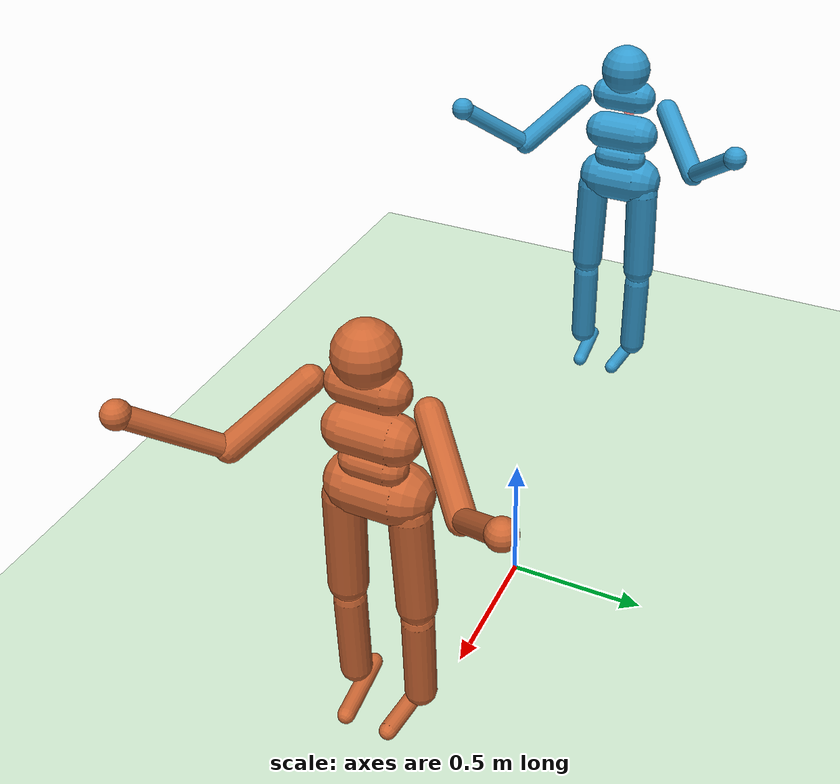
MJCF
<mujoco model="humanoid_hug">
  <compiler angle="degree" inertiafromgeom="true"/>
  <option timestep="0.005" iterations="50" tolerance="1e-10" solver="Newton" jacobian="dense" cone="pyramidal"/>

  <size nstack="3000000" nuser_body="1"/>

  <default>
    <joint armature="1" damping="1" limited="true"/>
    <geom conaffinity="1" condim="3" friction="0.8 0.1 0.1" margin="0.001" material="geom"/>
    <motor ctrlrange="-1 1" ctrllimited="true"/>
  </default>

  <asset>
    <texture type="skybox" builtin="gradient" rgb1="0.3 0.5 0.7" rgb2="0 0 0" width="512" height="3072"/>
    <texture type="2d" name="groundplane" builtin="checker" mark="edge" rgb1="0.2 0.3 0.4" rgb2="0.1 0.2 0.3" markrgb="0.8 0.8 0.8" width="300" height="300"/>
    <material name="groundplane" texture="groundplane" texuniform="true" texrepeat="5 5" reflectance="0.2"/>
    <material name="geom" rgba="0.8 0.6 0.4 1"/>
    <material name="h0_mat" rgba="0.2 0.6 0.8 1"/>
    <material name="h1_mat" rgba="0.8 0.4 0.2 1"/>
  </asset>

  <worldbody>
    <light cutoff="100" diffuse="1 1 1" dir="-0 0 -1.3" directional="true" exponent="1" pos="0 0 1.3" specular="0.1 0.1 0.1"/>
    <geom conaffinity="1" condim="3" name="floor" pos="0 0 0" rgba="0.8 0.9 0.8 1" size="40 40 0.1" type="plane" material="groundplane"/>

    <!-- ==================== HUMANOID 0 (h0) ==================== -->
    <body name="h0_torso" pos="-1.0 0 1.4">
      <camera name="h0_track" mode="trackcom" pos="0 -4 0" xyaxes="1 0 0 0 0 1"/>
      <freejoint name="h0_root"/>

      <!-- Torso geoms -->
      <geom name="h0_torso_geom" fromto="0 -0.07 0 0 0.07 0" size="0.07" type="capsule" material="h0_mat"/>
      <geom name="h0_chest_geom" fromto="0 -0.06 0.15 0 0.06 0.15" size="0.06" type="capsule" material="h0_mat"/>
      <geom name="h0_abdomen_geom" fromto="0 -0.05 -0.1 0 0.05 -0.1" size="0.05" type="capsule" material="h0_mat"/>

      <!-- Sites for hug detection -->
      <site name="h0_chest" pos="0 0 0.15" size="0.02" rgba="1 0 0 0.5"/>
      <site name="h0_pelvis" pos="0 0 -0.2" size="0.02" rgba="1 0 0 0.5"/>
      <site name="h0_back" pos="-0.08 0 0.05" size="0.02" rgba="1 0 0 0.5"/>

      <!-- Head -->
      <body name="h0_head" pos="0 0 0.25">
        <joint name="h0_head_yaw" type="hinge" axis="0 0 1" range="-50 50" armature="0.02" damping="0.1" stiffness="5"/>
        <joint name="h0_head_pitch" type="hinge" axis="0 1 0" range="-30 30" armature="0.02" damping="0.1" stiffness="5"/>
        <geom name="h0_head_geom" type="sphere" size="0.09" material="h0_mat"/>
        <site name="h0_head_site" pos="0 0 0.05" size="0.02" rgba="1 0 0 0.5"/>
      </body>

      <!-- Left Upper Arm -->
      <body name="h0_left_upper_arm" pos="0 0.17 0.12">
        <joint name="h0_left_shoulder1" type="hinge" axis="2 1 1" range="-85 60" armature="0.0068"/>
        <joint name="h0_left_shoulder2" type="hinge" axis="0 -1 1" range="-85 60" armature="0.0051"/>
        <geom name="h0_left_upper_arm_geom" fromto="0 0 0 0.16 0.16 -0.16" size="0.04" type="capsule" material="h0_mat"/>

        <!-- Left Lower Arm -->
        <body name="h0_left_lower_arm" pos="0.16 0.16 -0.16">
          <joint name="h0_left_elbow" type="hinge" axis="0 -1 1" range="-90 50" stiffness="0" armature="0.0028"/>
          <geom name="h0_left_lower_arm_geom" fromto="0.01 0.01 0.01 0.17 0.17 0.17" size="0.031" type="capsule" material="h0_mat"/>

          <!-- Left Hand -->
          <body name="h0_left_hand" pos="0.18 0.18 0.18">
            <geom name="h0_left_hand_geom" type="sphere" size="0.04" material="h0_mat"/>
            <site name="h0_lhand" pos="0 0 0" size="0.02" rgba="0 1 0 0.5"/>
          </body>
        </body>
      </body>

      <!-- Right Upper Arm -->
      <body name="h0_right_upper_arm" pos="0 -0.17 0.12">
        <joint name="h0_right_shoulder1" type="hinge" axis="2 -1 1" range="-60 85" armature="0.0068"/>
        <joint name="h0_right_shoulder2" type="hinge" axis="0 1 1" range="-60 85" armature="0.0051"/>
        <geom name="h0_right_upper_arm_geom" fromto="0 0 0 0.16 -0.16 -0.16" size="0.04" type="capsule" material="h0_mat"/>

        <!-- Right Lower Arm -->
        <body name="h0_right_lower_arm" pos="0.16 -0.16 -0.16">
          <joint name="h0_right_elbow" type="hinge" axis="0 -1 -1" range="-90 50" stiffness="0" armature="0.0028"/>
          <geom name="h0_right_lower_arm_geom" fromto="0.01 -0.01 0.01 0.17 -0.17 0.17" size="0.031" type="capsule" material="h0_mat"/>

          <!-- Right Hand -->
          <body name="h0_right_hand" pos="0.18 -0.18 0.18">
            <geom name="h0_right_hand_geom" type="sphere" size="0.04" material="h0_mat"/>
            <site name="h0_rhand" pos="0 0 0" size="0.02" rgba="0 1 0 0.5"/>
          </body>
        </body>
      </body>

      <!-- Lower body (pelvis) -->
      <body name="h0_lower_body" pos="0 0 -0.2">
        <joint name="h0_abdomen_z" type="hinge" axis="0 0 1" range="-45 45" armature="0.02"/>
        <joint name="h0_abdomen_y" type="hinge" axis="0 1 0" range="-75 30" armature="0.02"/>
        <geom name="h0_pelvis_geom" fromto="-0.02 -0.07 0 -0.02 0.07 0" size="0.09" type="capsule" material="h0_mat"/>

        <!-- Left Thigh -->
        <body name="h0_left_thigh" pos="0 0.1 -0.04">
          <joint name="h0_left_hip_x" type="hinge" axis="1 0 0" range="-25 5" armature="0.01"/>
          <joint name="h0_left_hip_z" type="hinge" axis="0 0 1" range="-60 35" armature="0.01"/>
          <joint name="h0_left_hip_y" type="hinge" axis="0 1 0" range="-110 20" armature="0.01"/>
          <geom name="h0_left_thigh_geom" fromto="0 0 0 0 0.01 -0.34" size="0.06" type="capsule" material="h0_mat"/>

          <!-- Left Shin -->
          <body name="h0_left_shin" pos="0 0.01 -0.403">
            <joint name="h0_left_knee" type="hinge" axis="0 1 0" range="-160 -2" armature="0.006"/>
            <geom name="h0_left_shin_geom" fromto="0 0 0 0 0 -0.3" size="0.049" type="capsule" material="h0_mat"/>

            <!-- Left Foot -->
            <body name="h0_left_foot" pos="0 0 -0.35">
              <joint name="h0_left_ankle" type="hinge" axis="0 1 0" range="-50 50" armature="0.008"/>
              <geom name="h0_left_foot_geom" fromto="-0.07 -0.02 0 0.14 -0.04 0" size="0.027" type="capsule" material="h0_mat"/>
            </body>
          </body>
        </body>

        <!-- Right Thigh -->
        <body name="h0_right_thigh" pos="0 -0.1 -0.04">
          <joint name="h0_right_hip_x" type="hinge" axis="-1 0 0" range="-25 5" armature="0.01"/>
          <joint name="h0_right_hip_z" type="hinge" axis="0 0 -1" range="-60 35" armature="0.01"/>
          <joint name="h0_right_hip_y" type="hinge" axis="0 1 0" range="-110 20" armature="0.01"/>
          <geom name="h0_right_thigh_geom" fromto="0 0 0 0 -0.01 -0.34" size="0.06" type="capsule" material="h0_mat"/>

          <!-- Right Shin -->
          <body name="h0_right_shin" pos="0 -0.01 -0.403">
            <joint name="h0_right_knee" type="hinge" axis="0 1 0" range="-160 -2" armature="0.006"/>
            <geom name="h0_right_shin_geom" fromto="0 0 0 0 0 -0.3" size="0.049" type="capsule" material="h0_mat"/>

            <!-- Right Foot -->
            <body name="h0_right_foot" pos="0 0 -0.35">
              <joint name="h0_right_ankle" type="hinge" axis="0 1 0" range="-50 50" armature="0.008"/>
              <geom name="h0_right_foot_geom" fromto="-0.07 0.02 0 0.14 0.04 0" size="0.027" type="capsule" material="h0_mat"/>
            </body>
          </body>
        </body>
      </body>
    </body>

    <!-- ==================== HUMANOID 1 (h1) ==================== -->
    <body name="h1_torso" pos="1.0 0 1.4">
      <camera name="h1_track" mode="trackcom" pos="0 -4 0" xyaxes="1 0 0 0 0 1"/>
      <freejoint name="h1_root"/>

      <!-- Torso geoms -->
      <geom name="h1_torso_geom" fromto="0 -0.07 0 0 0.07 0" size="0.07" type="capsule" material="h1_mat"/>
      <geom name="h1_chest_geom" fromto="0 -0.06 0.15 0 0.06 0.15" size="0.06" type="capsule" material="h1_mat"/>
      <geom name="h1_abdomen_geom" fromto="0 -0.05 -0.1 0 0.05 -0.1" size="0.05" type="capsule" material="h1_mat"/>

      <!-- Sites for hug detection -->
      <site name="h1_chest" pos="0 0 0.15" size="0.02" rgba="1 0 0 0.5"/>
      <site name="h1_pelvis" pos="0 0 -0.2" size="0.02" rgba="1 0 0 0.5"/>
      <site name="h1_back" pos="-0.08 0 0.05" size="0.02" rgba="1 0 0 0.5"/>

      <!-- Head -->
      <body name="h1_head" pos="0 0 0.25">
        <joint name="h1_head_yaw" type="hinge" axis="0 0 1" range="-50 50" armature="0.02" damping="0.1" stiffness="5"/>
        <joint name="h1_head_pitch" type="hinge" axis="0 1 0" range="-30 30" armature="0.02" damping="0.1" stiffness="5"/>
        <geom name="h1_head_geom" type="sphere" size="0.09" material="h1_mat"/>
        <site name="h1_head_site" pos="0 0 0.05" size="0.02" rgba="1 0 0 0.5"/>
      </body>

      <!-- Left Upper Arm -->
      <body name="h1_left_upper_arm" pos="0 0.17 0.12">
        <joint name="h1_left_shoulder1" type="hinge" axis="2 1 1" range="-85 60" armature="0.0068"/>
        <joint name="h1_left_shoulder2" type="hinge" axis="0 -1 1" range="-85 60" armature="0.0051"/>
        <geom name="h1_left_upper_arm_geom" fromto="0 0 0 0.16 0.16 -0.16" size="0.04" type="capsule" material="h1_mat"/>

        <!-- Left Lower Arm -->
        <body name="h1_left_lower_arm" pos="0.16 0.16 -0.16">
          <joint name="h1_left_elbow" type="hinge" axis="0 -1 1" range="-90 50" stiffness="0" armature="0.0028"/>
          <geom name="h1_left_lower_arm_geom" fromto="0.01 0.01 0.01 0.17 0.17 0.17" size="0.031" type="capsule" material="h1_mat"/>

          <!-- Left Hand -->
          <body name="h1_left_hand" pos="0.18 0.18 0.18">
            <geom name="h1_left_hand_geom" type="sphere" size="0.04" material="h1_mat"/>
            <site name="h1_lhand" pos="0 0 0" size="0.02" rgba="0 1 0 0.5"/>
          </body>
        </body>
      </body>

      <!-- Right Upper Arm -->
      <body name="h1_right_upper_arm" pos="0 -0.17 0.12">
        <joint name="h1_right_shoulder1" type="hinge" axis="2 -1 1" range="-60 85" armature="0.0068"/>
        <joint name="h1_right_shoulder2" type="hinge" axis="0 1 1" range="-60 85" armature="0.0051"/>
        <geom name="h1_right_upper_arm_geom" fromto="0 0 0 0.16 -0.16 -0.16" size="0.04" type="capsule" material="h1_mat"/>

        <!-- Right Lower Arm -->
        <body name="h1_right_lower_arm" pos="0.16 -0.16 -0.16">
          <joint name="h1_right_elbow" type="hinge" axis="0 -1 -1" range="-90 50" stiffness="0" armature="0.0028"/>
          <geom name="h1_right_lower_arm_geom" fromto="0.01 -0.01 0.01 0.17 -0.17 0.17" size="0.031" type="capsule" material="h1_mat"/>

          <!-- Right Hand -->
          <body name="h1_right_hand" pos="0.18 -0.18 0.18">
            <geom name="h1_right_hand_geom" type="sphere" size="0.04" material="h1_mat"/>
            <site name="h1_rhand" pos="0 0 0" size="0.02" rgba="0 1 0 0.5"/>
          </body>
        </body>
      </body>

      <!-- Lower body (pelvis) -->
      <body name="h1_lower_body" pos="0 0 -0.2">
        <joint name="h1_abdomen_z" type="hinge" axis="0 0 1" range="-45 45" armature="0.02"/>
        <joint name="h1_abdomen_y" type="hinge" axis="0 1 0" range="-75 30" armature="0.02"/>
        <geom name="h1_pelvis_geom" fromto="-0.02 -0.07 0 -0.02 0.07 0" size="0.09" type="capsule" material="h1_mat"/>

        <!-- Left Thigh -->
        <body name="h1_left_thigh" pos="0 0.1 -0.04">
          <joint name="h1_left_hip_x" type="hinge" axis="1 0 0" range="-25 5" armature="0.01"/>
          <joint name="h1_left_hip_z" type="hinge" axis="0 0 1" range="-60 35" armature="0.01"/>
          <joint name="h1_left_hip_y" type="hinge" axis="0 1 0" range="-110 20" armature="0.01"/>
          <geom name="h1_left_thigh_geom" fromto="0 0 0 0 0.01 -0.34" size="0.06" type="capsule" material="h1_mat"/>

          <!-- Left Shin -->
          <body name="h1_left_shin" pos="0 0.01 -0.403">
            <joint name="h1_left_knee" type="hinge" axis="0 1 0" range="-160 -2" armature="0.006"/>
            <geom name="h1_left_shin_geom" fromto="0 0 0 0 0 -0.3" size="0.049" type="capsule" material="h1_mat"/>

            <!-- Left Foot -->
            <body name="h1_left_foot" pos="0 0 -0.35">
              <joint name="h1_left_ankle" type="hinge" axis="0 1 0" range="-50 50" armature="0.008"/>
              <geom name="h1_left_foot_geom" fromto="-0.07 -0.02 0 0.14 -0.04 0" size="0.027" type="capsule" material="h1_mat"/>
            </body>
          </body>
        </body>

        <!-- Right Thigh -->
        <body name="h1_right_thigh" pos="0 -0.1 -0.04">
          <joint name="h1_right_hip_x" type="hinge" axis="-1 0 0" range="-25 5" armature="0.01"/>
          <joint name="h1_right_hip_z" type="hinge" axis="0 0 -1" range="-60 35" armature="0.01"/>
          <joint name="h1_right_hip_y" type="hinge" axis="0 1 0" range="-110 20" armature="0.01"/>
          <geom name="h1_right_thigh_geom" fromto="0 0 0 0 -0.01 -0.34" size="0.06" type="capsule" material="h1_mat"/>

          <!-- Right Shin -->
          <body name="h1_right_shin" pos="0 -0.01 -0.403">
            <joint name="h1_right_knee" type="hinge" axis="0 1 0" range="-160 -2" armature="0.006"/>
            <geom name="h1_right_shin_geom" fromto="0 0 0 0 0 -0.3" size="0.049" type="capsule" material="h1_mat"/>

            <!-- Right Foot -->
            <body name="h1_right_foot" pos="0 0 -0.35">
              <joint name="h1_right_ankle" type="hinge" axis="0 1 0" range="-50 50" armature="0.008"/>
              <geom name="h1_right_foot_geom" fromto="-0.07 0.02 0 0.14 0.04 0" size="0.027" type="capsule" material="h1_mat"/>
            </body>
          </body>
        </body>
      </body>
    </body>
  </worldbody>

  <actuator>
    <!-- Humanoid 0 actuators (21 total) -->
    <motor name="h0_abdomen_z" joint="h0_abdomen_z" gear="100" ctrlrange="-1 1"/>
    <motor name="h0_abdomen_y" joint="h0_abdomen_y" gear="100" ctrlrange="-1 1"/>
    <motor name="h0_left_hip_x" joint="h0_left_hip_x" gear="100" ctrlrange="-1 1"/>
    <motor name="h0_left_hip_z" joint="h0_left_hip_z" gear="100" ctrlrange="-1 1"/>
    <motor name="h0_left_hip_y" joint="h0_left_hip_y" gear="100" ctrlrange="-1 1"/>
    <motor name="h0_left_knee" joint="h0_left_knee" gear="100" ctrlrange="-1 1"/>
    <motor name="h0_left_ankle" joint="h0_left_ankle" gear="100" ctrlrange="-1 1"/>
    <motor name="h0_right_hip_x" joint="h0_right_hip_x" gear="100" ctrlrange="-1 1"/>
    <motor name="h0_right_hip_z" joint="h0_right_hip_z" gear="100" ctrlrange="-1 1"/>
    <motor name="h0_right_hip_y" joint="h0_right_hip_y" gear="100" ctrlrange="-1 1"/>
    <motor name="h0_right_knee" joint="h0_right_knee" gear="100" ctrlrange="-1 1"/>
    <motor name="h0_right_ankle" joint="h0_right_ankle" gear="100" ctrlrange="-1 1"/>
    <motor name="h0_left_shoulder1" joint="h0_left_shoulder1" gear="25" ctrlrange="-1 1"/>
    <motor name="h0_left_shoulder2" joint="h0_left_shoulder2" gear="25" ctrlrange="-1 1"/>
    <motor name="h0_left_elbow" joint="h0_left_elbow" gear="25" ctrlrange="-1 1"/>
    <motor name="h0_right_shoulder1" joint="h0_right_shoulder1" gear="25" ctrlrange="-1 1"/>
    <motor name="h0_right_shoulder2" joint="h0_right_shoulder2" gear="25" ctrlrange="-1 1"/>
    <motor name="h0_right_elbow" joint="h0_right_elbow" gear="25" ctrlrange="-1 1"/>

    <!-- Humanoid 1 actuators (21 total) -->
    <motor name="h1_abdomen_z" joint="h1_abdomen_z" gear="100" ctrlrange="-1 1"/>
    <motor name="h1_abdomen_y" joint="h1_abdomen_y" gear="100" ctrlrange="-1 1"/>
    <motor name="h1_left_hip_x" joint="h1_left_hip_x" gear="100" ctrlrange="-1 1"/>
    <motor name="h1_left_hip_z" joint="h1_left_hip_z" gear="100" ctrlrange="-1 1"/>
    <motor name="h1_left_hip_y" joint="h1_left_hip_y" gear="100" ctrlrange="-1 1"/>
    <motor name="h1_left_knee" joint="h1_left_knee" gear="100" ctrlrange="-1 1"/>
    <motor name="h1_left_ankle" joint="h1_left_ankle" gear="100" ctrlrange="-1 1"/>
    <motor name="h1_right_hip_x" joint="h1_right_hip_x" gear="100" ctrlrange="-1 1"/>
    <motor name="h1_right_hip_z" joint="h1_right_hip_z" gear="100" ctrlrange="-1 1"/>
    <motor name="h1_right_hip_y" joint="h1_right_hip_y" gear="100" ctrlrange="-1 1"/>
    <motor name="h1_right_knee" joint="h1_right_knee" gear="100" ctrlrange="-1 1"/>
    <motor name="h1_right_ankle" joint="h1_right_ankle" gear="100" ctrlrange="-1 1"/>
    <motor name="h1_left_shoulder1" joint="h1_left_shoulder1" gear="25" ctrlrange="-1 1"/>
    <motor name="h1_left_shoulder2" joint="h1_left_shoulder2" gear="25" ctrlrange="-1 1"/>
    <motor name="h1_left_elbow" joint="h1_left_elbow" gear="25" ctrlrange="-1 1"/>
    <motor name="h1_right_shoulder1" joint="h1_right_shoulder1" gear="25" ctrlrange="-1 1"/>
    <motor name="h1_right_shoulder2" joint="h1_right_shoulder2" gear="25" ctrlrange="-1 1"/>
    <motor name="h1_right_elbow" joint="h1_right_elbow" gear="25" ctrlrange="-1 1"/>
  </actuator>
</mujoco>
